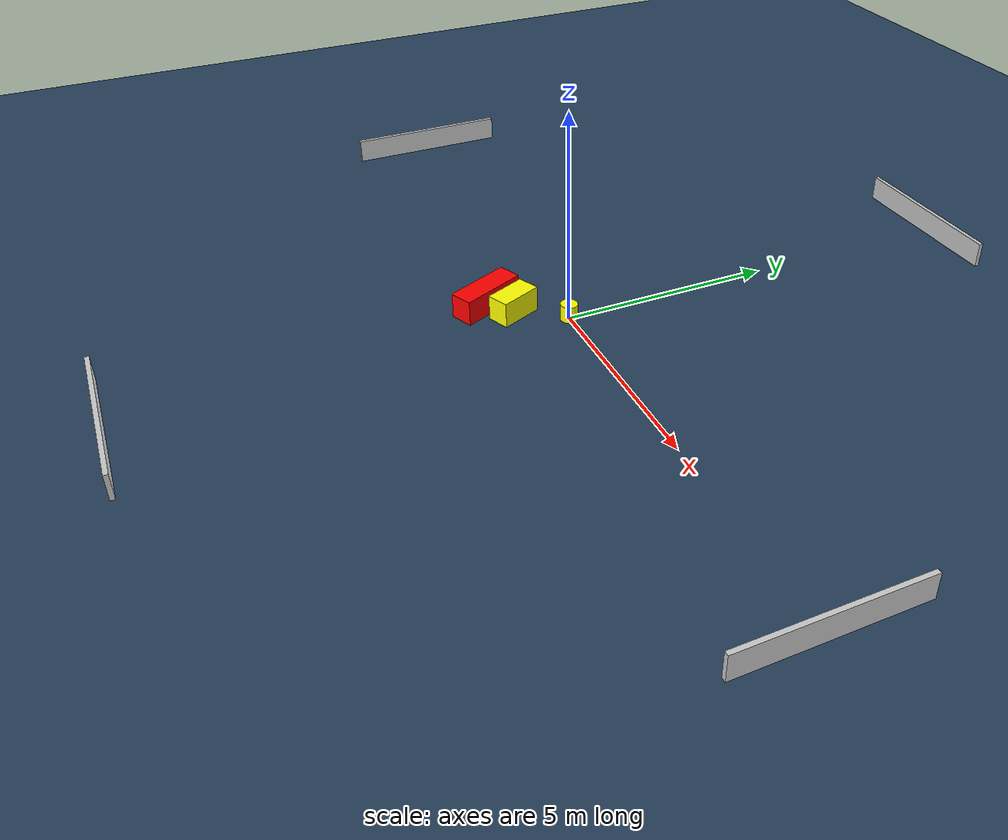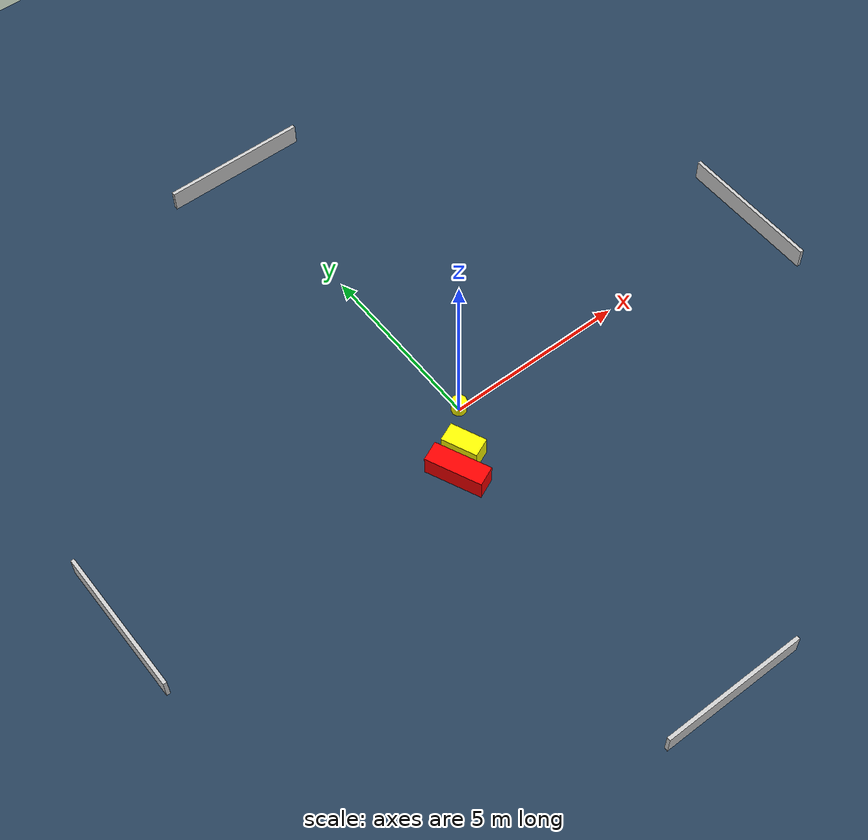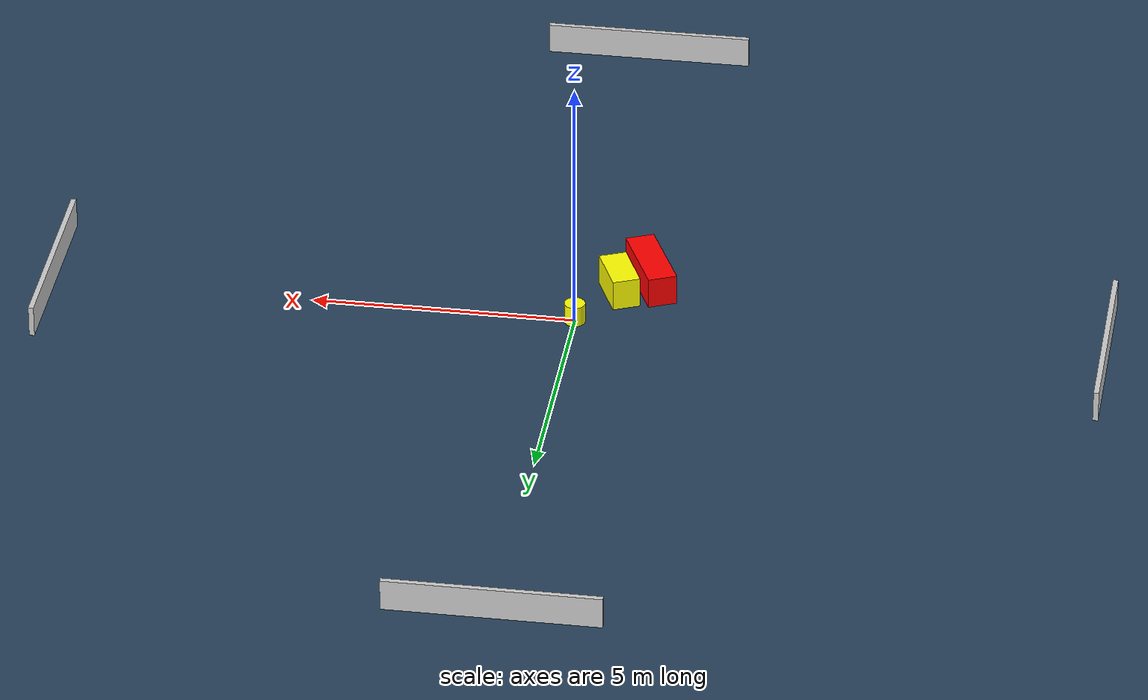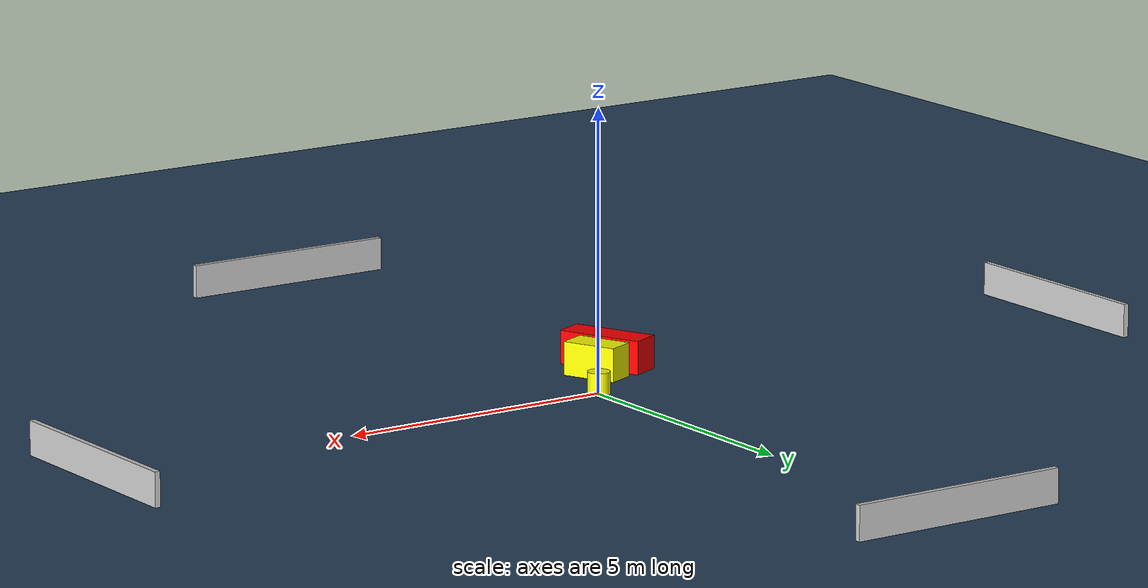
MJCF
<?xml version="1.0" ?>
<mujoco model="generated_environment">
  <option timestep="0.01" integrator="RK4" cone="elliptic"/>
  <default>
    <geom density="1"/>
  </default>
  <asset>
    <texture builtin="gradient" height="3072" name="skybox" rgb1="0.3 0.5 0.7" rgb2="0 0 0" type="skybox" width="512"/>
    <texture builtin="checker" height="300" name="groundplane" rgb1="0.2 0.3 0.4" rgb2="0.1 0.2 0.3" type="2d" width="300"/>
    <material name="groundplane" reflectance="0.2" texrepeat="5 5" texture="groundplane"/>
  </asset>
  <worldbody>
    <light dir="0 0 -1" directional="true" pos="0 0 1.5"/>
    <geom condim="3" friction="0.5 0.005 0.001" material="groundplane" name="floor" pos="0 0 0" size="0 0 0.05" type="plane"/>
    <body name="walls">
      <geom name="wall_1" condim="4" pos="-10.0 0.0 0.3" rgba="0.800000011920929 0.800000011920929 0.800000011920929 1.0" size="0.05 2.0 0.3" type="box"/>
      <geom name="wall_2" condim="4" pos="10.0 0.0 0.3" rgba="0.800000011920929 0.800000011920929 0.800000011920929 1.0" size="0.05 2.0 0.3" type="box"/>
      <geom name="wall_3" condim="4" pos="0.0 -10.0 0.3" rgba="0.800000011920929 0.800000011920929 0.800000011920929 1.0" size="2.0 0.05 0.3" type="box"/>
      <geom name="wall_4" condim="4" pos="0.0 10.0 0.3" rgba="0.800000011920929 0.800000011920929 0.800000011920929 1.0" size="2.0 0.05 0.3" type="box"/>
    </body>
    <body name="robot">
      <joint name="joint_x" type="slide" pos="0 0 0" axis="1 0 0"/>
      <joint name="joint_y" type="slide" pos="0 0 0" axis="0 1 0"/>
      <geom name="robot" type="cylinder" pos="0.0 0.0 0.2" size="0.2 0.2 0.0" mass="5.0" friction="1.0 0.005 0.0001" condim="4" rgba="1.0 1.0 0.0 1.0"/>
    </body>
    <body name="obstacle_1_movable">
      <geom name="obstacle_1_movable" condim="4" pos="-0.6942821785513108 -1.0686375819448182 0.3" euler="0 0 293.3795560409755" friction="0.0 0.005 0.001" rgba="1.0 1.0 0.0 1.0" size="0.5013902945796902 0.2656750079928683 0.3" type="box" mass="0.1"/>
      <joint type="free"/>
    </body>
    <body name="obstacle_2_static">
      <geom name="obstacle_2_static" condim="4" pos="-1.2332876387762006 -1.522815390972015 0.3" euler="0 0 23.9374876034492" friction="0.0 0.005 0.001" rgba="1.0 0.0 0.0 1.0" size="0.27732079449696245 0.7875506942980257 0.3" type="box"/>
    </body>
  </worldbody>
  <actuator>
    <motor name="actuator_x" joint="joint_x" gear="1" ctrlrange="-1 1"/>
    <motor name="actuator_y" joint="joint_y" gear="1" ctrlrange="-1 1"/>
  </actuator>
</mujoco>
